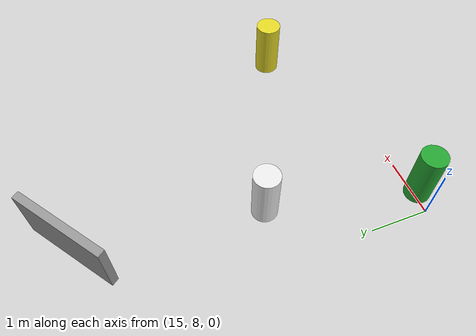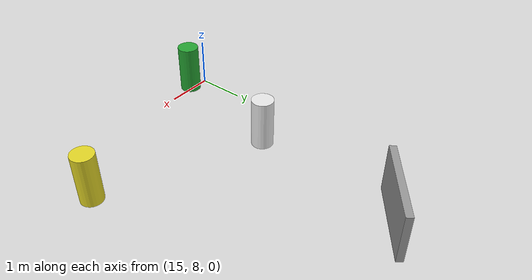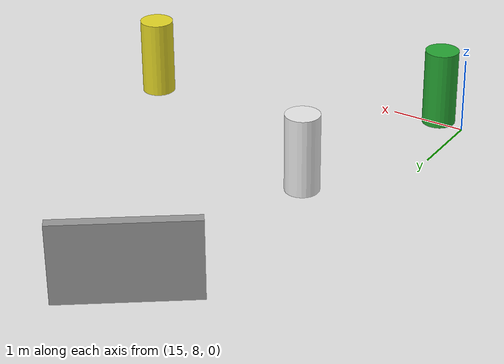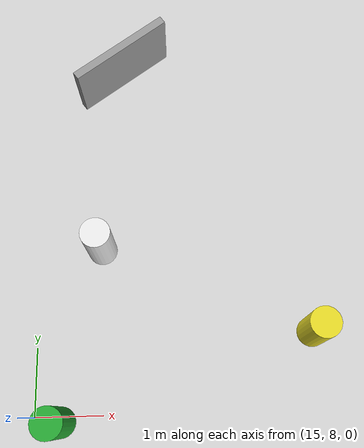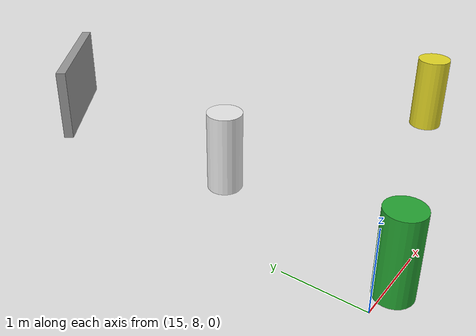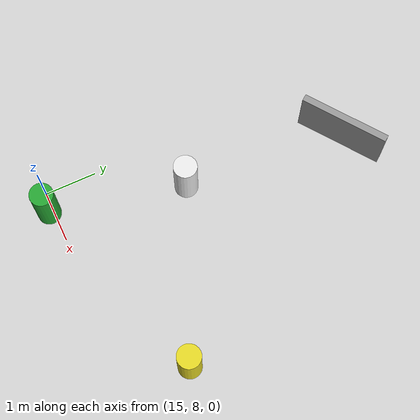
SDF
<sdf version="1.7">
 <world name="IGVC AutoNav">
  <model name="barrel_31">
   <link name="link">
    <inertial>
     <mass>1</mass>
     <inertia><ixx>0.145833</ixx><ixy>0</ixy><ixz>0</ixz><iyy>0.145833</iyy><iyz>0</iyz><izz>0.125</izz></inertia>
    </inertial>
    <visual name="visual">
     <geometry><cylinder><radius>0.222916</radius><length>1.03567</length></cylinder></geometry>
     <material>
      <script><name>Gazebo/Green</name><uri>file://media/materials/scripts/gazebo.material</uri></script>
      <shader type="pixel"/>
     </material>
    </visual>
    <collision name="collision">
     <geometry><cylinder><radius>0.222916</radius><length>1.03567</length></cylinder></geometry>
     <surface>
      <friction>
       <ode><mu>1</mu><mu2>1</mu2><fdir1>0 0 0</fdir1><slip1>0</slip1><slip2>0</slip2></ode>
       <torsional>
        <coefficient>1</coefficient>
        <patch_radius>0</patch_radius>
        <surface_radius>0</surface_radius>
        <use_patch_radius>1</use_patch_radius>
        <ode><slip>0</slip></ode>
       </torsional>
      </friction>
      <bounce><restitution_coefficient>0</restitution_coefficient><threshold>1e+06</threshold></bounce>
      <contact>
       <collide_without_contact>0</collide_without_contact>
       <collide_without_contact_bitmask>1</collide_without_contact_bitmask>
       <collide_bitmask>1</collide_bitmask>
       <ode>
        <soft_cfm>0</soft_cfm>
        <soft_erp>0.2</soft_erp>
        <kp>1e+13</kp>
        <kd>1</kd>
        <max_vel>0.01</max_vel>
        <min_depth>0</min_depth>
       </ode>
       <bullet>
        <split_impulse>1</split_impulse>
        <split_impulse_penetration_threshold>-0.01</split_impulse_penetration_threshold>
        <soft_cfm>0</soft_cfm>
        <soft_erp>0.2</soft_erp>
        <kp>1e+13</kp>
        <kd>1</kd>
       </bullet>
      </contact>
     </surface>
    </collision>
   </link>
   <static>0</static>
   <pose>15.379 7.92408 0.517835 0 -0 0.000338</pose>
  </model>
  <model name="barrel_32">
   <link name="link">
    <inertial>
     <mass>1</mass>
     <inertia><ixx>0.145833</ixx><ixy>0</ixy><ixz>0</ixz><iyy>0.145833</iyy><iyz>0</iyz><izz>0.125</izz></inertia>
    </inertial>
    <visual name="visual">
     <geometry><cylinder><radius>0.222916</radius><length>1.03567</length></cylinder></geometry>
     <material>
      <script><name>Gazebo/Yellow</name><uri>file://media/materials/scripts/gazebo.material</uri></script>
      <shader type="pixel"/>
     </material>
    </visual>
    <collision name="collision">
     <geometry><cylinder><radius>0.222916</radius><length>1.03567</length></cylinder></geometry>
     <surface>
      <friction>
       <ode><mu>1</mu><mu2>1</mu2><fdir1>0 0 0</fdir1><slip1>0</slip1><slip2>0</slip2></ode>
       <torsional>
        <coefficient>1</coefficient>
        <patch_radius>0</patch_radius>
        <surface_radius>0</surface_radius>
        <use_patch_radius>1</use_patch_radius>
        <ode><slip>0</slip></ode>
       </torsional>
      </friction>
      <bounce><restitution_coefficient>0</restitution_coefficient><threshold>1e+06</threshold></bounce>
      <contact>
       <collide_without_contact>0</collide_without_contact>
       <collide_without_contact_bitmask>1</collide_without_contact_bitmask>
       <collide_bitmask>1</collide_bitmask>
       <ode>
        <soft_cfm>0</soft_cfm>
        <soft_erp>0.2</soft_erp>
        <kp>1e+13</kp>
        <kd>1</kd>
        <max_vel>0.01</max_vel>
        <min_depth>0</min_depth>
       </ode>
       <bullet>
        <split_impulse>1</split_impulse>
        <split_impulse_penetration_threshold>-0.01</split_impulse_penetration_threshold>
        <soft_cfm>0</soft_cfm>
        <soft_erp>0.2</soft_erp>
        <kp>1e+13</kp>
        <kd>1</kd>
       </bullet>
      </contact>
     </surface>
    </collision>
   </link>
   <static>0</static>
   <pose>19.1435 9.11208 0.517835 0 -0 0.000323</pose>
  </model>
  <model name="barrel_38">
   <link name="link">
    <inertial>
     <mass>1</mass>
     <inertia><ixx>0.145833</ixx><ixy>0</ixy><ixz>0</ixz><iyy>0.145833</iyy><iyz>0</iyz><izz>0.125</izz></inertia>
    </inertial>
    <visual name="visual">
     <geometry><cylinder><radius>0.222916</radius><length>1.03567</length></cylinder></geometry>
     <material>
      <script><name>Gazebo/White</name><uri>file://media/materials/scripts/gazebo.material</uri></script>
      <shader type="pixel"/>
     </material>
    </visual>
    <collision name="collision">
     <geometry><cylinder><radius>0.222916</radius><length>1.03567</length></cylinder></geometry>
     <surface>
      <friction>
       <ode><mu>1</mu><mu2>1</mu2><fdir1>0 0 0</fdir1><slip1>0</slip1><slip2>0</slip2></ode>
       <torsional>
        <coefficient>1</coefficient>
        <patch_radius>0</patch_radius>
        <surface_radius>0</surface_radius>
        <use_patch_radius>1</use_patch_radius>
        <ode><slip>0</slip></ode>
       </torsional>
      </friction>
      <bounce><restitution_coefficient>0</restitution_coefficient><threshold>1e+06</threshold></bounce>
      <contact>
       <collide_without_contact>0</collide_without_contact>
       <collide_without_contact_bitmask>1</collide_without_contact_bitmask>
       <collide_bitmask>1</collide_bitmask>
       <ode>
        <soft_cfm>0</soft_cfm>
        <soft_erp>0.2</soft_erp>
        <kp>1e+13</kp>
        <kd>1</kd>
        <max_vel>0.01</max_vel>
        <min_depth>0</min_depth>
       </ode>
       <bullet>
        <split_impulse>1</split_impulse>
        <split_impulse_penetration_threshold>-0.01</split_impulse_penetration_threshold>
        <soft_cfm>0</soft_cfm>
        <soft_erp>0.2</soft_erp>
        <kp>1e+13</kp>
        <kd>1</kd>
       </bullet>
      </contact>
     </surface>
    </collision>
   </link>
   <static>0</static>
   <pose>15.9753 10.4826 0.517835 0 -0 0.000351</pose>
  </model>
  <model name="unit_box">
   <pose>16.327 13.5562 0.499999 -1e-06 3e-06 -0.944595</pose>
   <link name="link">
    <inertial>
     <mass>1</mass>
     <inertia>
      <ixx>0.166667</ixx>
      <ixy>0</ixy>
      <ixz>0</ixz>
      <iyy>0.166667</iyy>
      <iyz>0</iyz>
      <izz>0.166667</izz>
     </inertia>
    </inertial>
    <collision name="collision"><geometry><box><size>0.131785 1.70329 1</size></box></geometry></collision>
    <visual name="visual">
     <geometry><box><size>0.131785 1.70329 1</size></box></geometry>
     <material>
      <script><name>Gazebo/Grey</name><uri>file://media/materials/scripts/gazebo.material</uri></script>
     </material>
    </visual>
   </link>
  </model>
 </world>
</sdf>
